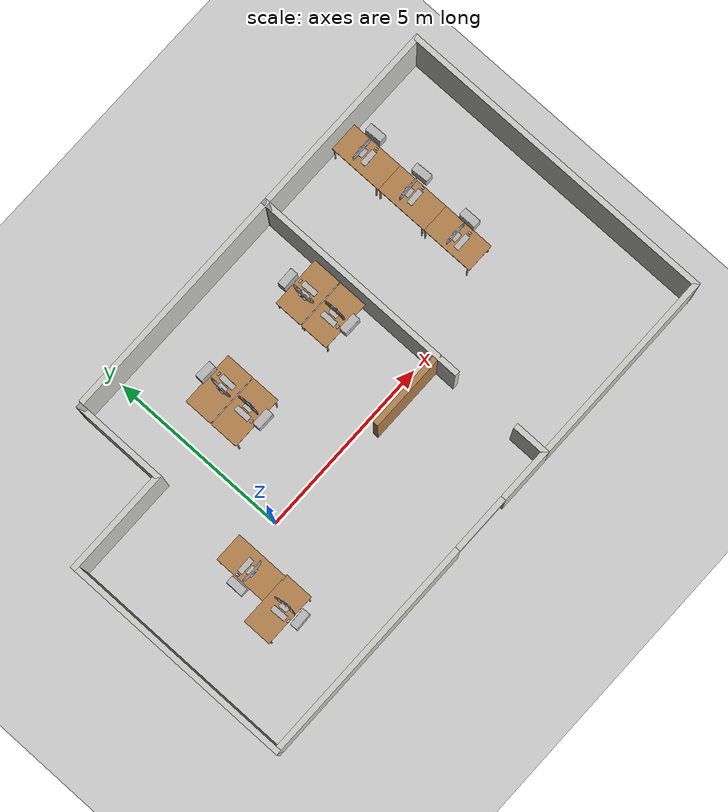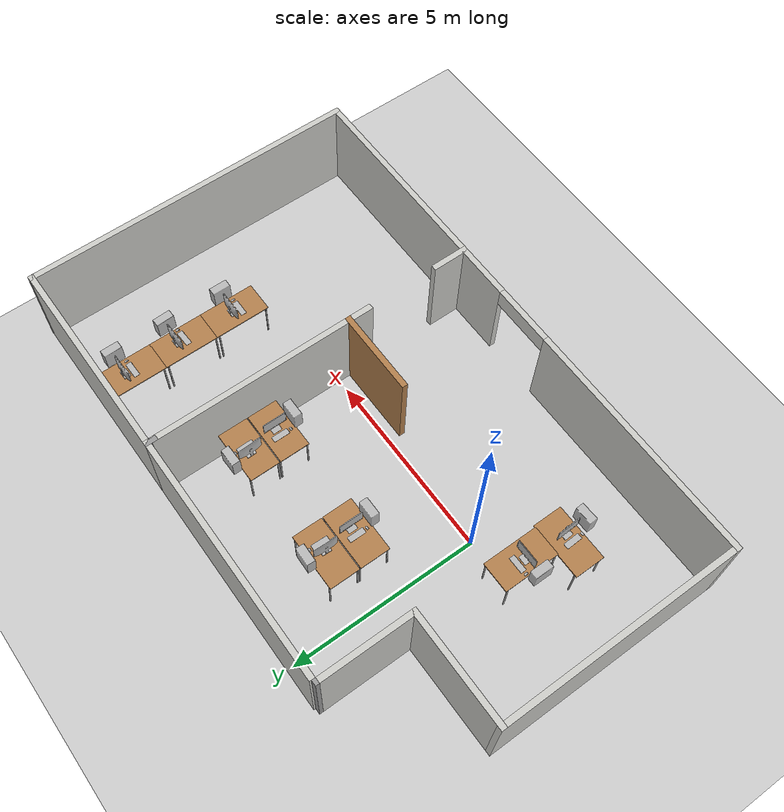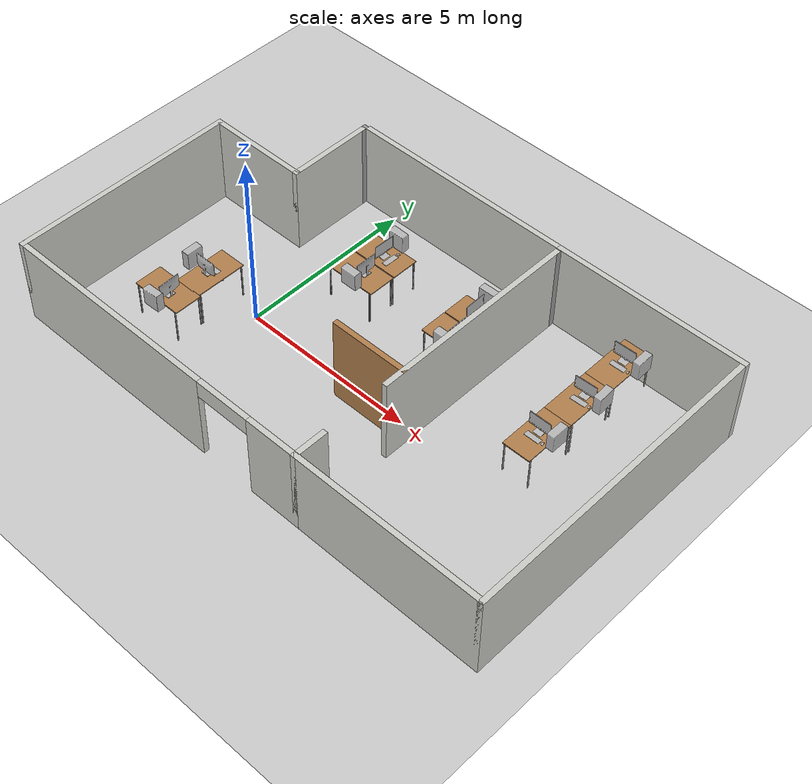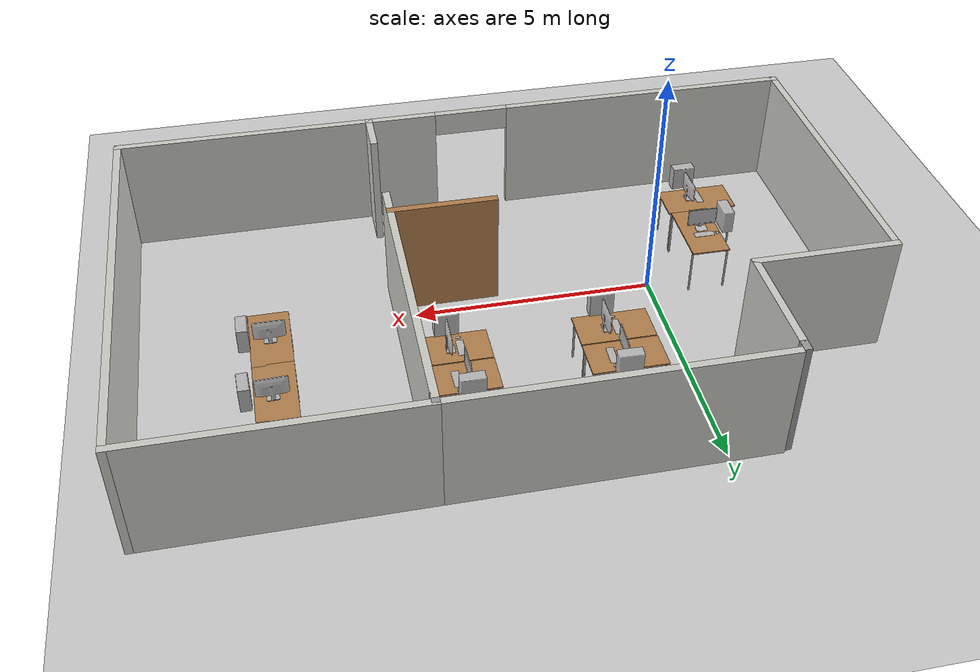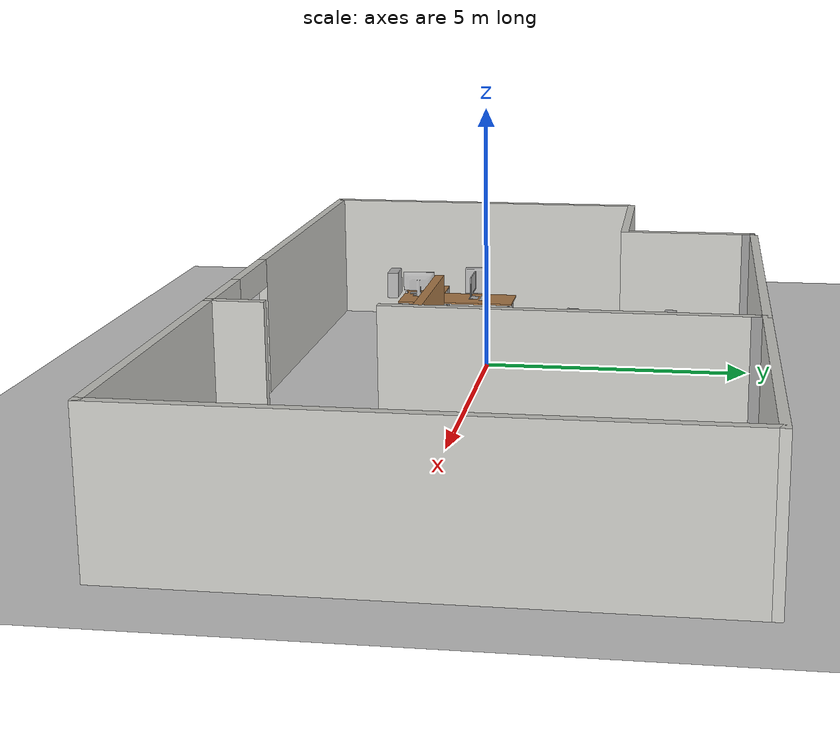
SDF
<sdf version="1.6">
 <world name="velmaverse">
  <scene><ambient>1.0 1.0 1.0 1.0</ambient><shadows>0</shadows></scene>
  <plugin name="ocznica" filename="libocznica.so"/>
  <light type="directional" name="sun1">
   <cast_shadows>false</cast_shadows>
   <pose>0 0 10 0 0 0</pose>
   <diffuse>1 1 1 0.5</diffuse>
   <specular>0 0 0 1</specular>
   <attenuation><range>1000</range><constant>1</constant><linear>1</linear><quadratic>0</quadratic></attenuation>
   <direction>0 0 -1</direction>
  </light>
  <light type="directional" name="sun2">
   <cast_shadows>false</cast_shadows>
   <pose>-20 -20 10 0 0 0</pose>
   <diffuse>1 1 1 0.5</diffuse>
   <specular>0 0 0 1</specular>
   <attenuation><range>1000</range><constant>1</constant><linear>1</linear><quadratic>0</quadratic></attenuation>
   <direction>0.5 0.5 0</direction>
  </light>
  <light type="directional" name="sun3">
   <cast_shadows>false</cast_shadows>
   <pose>-20 20 10 0 0 0</pose>
   <diffuse>1 1 1 0.5</diffuse>
   <specular>0 0 0 1</specular>
   <attenuation><range>1000</range><constant>1</constant><linear>1</linear><quadratic>0</quadratic></attenuation>
   <direction>0.5 -0.5 0</direction>
  </light>
  <light type="directional" name="sun4">
   <cast_shadows>false</cast_shadows>
   <pose>20 -20 10 0 0 0</pose>
   <diffuse>1 1 1 0.5</diffuse>
   <specular>0 0 0 1</specular>
   <attenuation><range>1000</range><constant>1</constant><linear>1</linear><quadratic>0</quadratic></attenuation>
   <direction>-0.5 0.5 0</direction>
  </light>
  <light type="directional" name="sun5">
   <cast_shadows>false</cast_shadows>
   <pose>20 20 10 0 0 0</pose>
   <diffuse>1 1 1 0.5</diffuse>
   <specular>0 0 0 1</specular>
   <attenuation><range>1000</range><constant>1</constant><linear>1</linear><quadratic>0</quadratic></attenuation>
   <direction>-0.5 -0.5 0</direction>
  </light>
  <light type="directional" name="sun6">
   <cast_shadows>false</cast_shadows>
   <pose>-20 0 10 0 0 0</pose>
   <diffuse>1 1 1 1</diffuse>
   <specular>0 0 0 1</specular>
   <attenuation><range>1000</range><constant>1</constant><linear>1</linear><quadratic>0</quadratic></attenuation>
   <direction>1 0 0</direction>
  </light>
  <light type="directional" name="sun7">
   <cast_shadows>false</cast_shadows>
   <pose>20 0 10 0 0 0</pose>
   <diffuse>1 1 1 1</diffuse>
   <specular>0 0 0 1</specular>
   <attenuation><range>1000</range><constant>1</constant><linear>1</linear><quadratic>0</quadratic></attenuation>
   <direction>-1 0 0</direction>
  </light>
  <light type="directional" name="sun8">
   <cast_shadows>false</cast_shadows>
   <pose>0 -20 10 0 0 0</pose>
   <diffuse>1 1 1 1</diffuse>
   <specular>0 0 0 1</specular>
   <attenuation><range>1000</range><constant>1</constant><linear>1</linear><quadratic>0</quadratic></attenuation>
   <direction>0 1 0</direction>
  </light>
  <light type="directional" name="sun9">
   <cast_shadows>false</cast_shadows>
   <pose>0 20 10 0 0 0</pose>
   <diffuse>1 1 1 1</diffuse>
   <specular>0 0 0 1</specular>
   <attenuation><range>1000</range><constant>1</constant><linear>1</linear><quadratic>0</quadratic></attenuation>
   <direction>0 -1 0</direction>
  </light>
  <model name="flooria"><include><uri>model://flooria</uri><pose>2 0 0 0 0 0</pose></include></model>
  <model name="Sala"><include><uri>model://Sala</uri></include></model>
  <model name="table1"><include><uri>model://table</uri></include><pose>4.65 2.25 0.01 0 0 0</pose></model>
  <model name="table2"><include><uri>model://table</uri></include><pose>4.65 3.075 0.01 0 0 0</pose></model>
  <model name="table3"><include><uri>model://table</uri></include><pose>1.45 2.25 0.01 0 0 0</pose></model>
  <model name="table4"><include><uri>model://table</uri></include><pose>1.45 3.075 0.01 0 0 0</pose></model>
  <model name="table5"><include><uri>model://table</uri></include><pose>-1.5 -1.5 0.01 0 0 0</pose></model>
  <model name="table6">
   <include><uri>model://table</uri></include>
   <pose>-1.2 -0.375 0.01 0 0 1.5707</pose>
  </model>
  <model name="table7"><include><uri>model://table</uri></include><pose>8.0 4.25 0.01 0 0 1.5707</pose></model>
  <model name="table8"><include><uri>model://table</uri></include><pose>8.0 2.765 0.01 0 0 1.5707</pose></model>
  <model name="table9"><include><uri>model://table</uri></include><pose>8.0 1.3 0.01 0 0 1.5707</pose></model>
  <model name="computer1">
   <include><uri>model://computer</uri></include>
   <pose>-1.25 -0.44 1.02 0 0 3.142</pose>
  </model>
  <model name="computer2">
   <include><uri>model://computer</uri></include>
   <pose>-1.35 -1.58 1.02 0 0 -1.53507</pose>
  </model>
  <model name="computer3">
   <include><uri>model://computer</uri></include>
   <pose>4.67 2.27 1.02 0 0 -1.5707</pose>
  </model>
  <model name="computer4">
   <include><uri>model://computer</uri></include>
   <pose>1.6 2.27 1.02 0 0 -1.5707</pose>
  </model>
  <model name="computer5">
   <include><uri>model://computer</uri></include>
   <pose>4.5 3.1 1.02 0 0 1.5907</pose>
  </model>
  <model name="computer6">
   <include><uri>model://computer</uri></include>
   <pose>1.51 3.05 1.02 0 0 1.5407</pose>
  </model>
  <model name="computer7"><include><uri>model://computer</uri></include><pose>8.0 1.35 1.02 0 0 0</pose></model>
  <model name="computer8">
   <include><uri>model://computer</uri></include>
   <pose>8.05 2.92 1.02 0 0 0.04</pose>
  </model>
  <model name="computer9">
   <include><uri>model://computer</uri></include>
   <pose>8.025 4.4 1.02 0 0 0.017</pose>
  </model>
 </world>
</sdf>

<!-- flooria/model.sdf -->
<sdf version="1.6">
    <model name="flooria">
		<plugin name="flooria" filename="libflooria.so"/>
        <static>true</static>
        <link name="base">
            <collision name="collision">
                <geometry>
                    <plane>
                        <normal>0 0 1</normal>
                        <size>100 100</size>
                    </plane>
                </geometry>
                <surface>
                    <friction>
                        <ode>
                            <mu>100</mu>
                            <mu2>100</mu2>
                        </ode>
                    </friction>
                </surface>
            </collision>
            <visual name="visual">
                <cast_shadows>false</cast_shadows>
                <geometry>
                    <plane>
                        <normal>0 0 1</normal>
                        <size>20 20</size>
                    </plane>
                </geometry>
                <material>
                    <script>
                        <uri>model://flooria/materials</uri>
                        <name>flooria/surface</name>
                    </script>
                </material>
            </visual>
        </link>
    </model>
</sdf>

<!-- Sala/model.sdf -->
<sdf version='1.6'>
  <model name='Sala'>
    <pose frame=''>3.38391 0.662582 0 0 -0 0</pose>
    <link name='Wall_0'>
      <pose frame=''>-2.675 -4.425 0 0 -0 0</pose>
      <visual name='Wall_0_Visual_0'>
        <pose frame=''>-1.56963 0 1.25 0 -0 0</pose>
        <geometry>
          <box>
            <size>6.36074 0.15 2.5</size>
          </box>
        </geometry>
        <material>
          <script>
            <uri>file://media/materials/scripts/gazebo.material</uri>
            <name>Gazebo/CeilingTiled</name>
          </script>
          <ambient>1 1 1 1</ambient>
        </material>
      </visual>
      <collision name='Wall_0_Collision_0'>
        <geometry>
          <box>
            <size>6.36074 0.15 2.5</size>
          </box>
        </geometry>
        <pose frame=''>-1.56963 0 1.25 0 -0 0</pose>
      </collision>
      <visual name='Wall_0_Visual_1'>
        <pose frame=''>3.98037 0 1.25 0 -0 0</pose>
        <geometry>
          <box>
            <size>1.53926 0.15 2.5</size>
          </box>
        </geometry>
        <material>
          <script>
            <uri>file://media/materials/scripts/gazebo.material</uri>
            <name>Gazebo/CeilingTiled</name>
          </script>
          <ambient>1 1 1 1</ambient>
        </material>
      </visual>
      <collision name='Wall_0_Collision_1'>
        <geometry>
          <box>
            <size>1.53926 0.15 2.5</size>
          </box>
        </geometry>
        <pose frame=''>3.98037 0 1.25 0 -0 0</pose>
      </collision>
      <visual name='Wall_0_Visual_2'>
        <pose frame=''>2.41074 0 2.25 0 -0 0</pose>
        <geometry>
          <box>
            <size>1.6 0.15 0.5</size>
          </box>
        </geometry>
        <material>
          <script>
            <uri>file://media/materials/scripts/gazebo.material</uri>
            <name>Gazebo/CeilingTiled</name>
          </script>
          <ambient>1 1 1 1</ambient>
        </material>
      </visual>
      <collision name='Wall_0_Collision_2'>
        <geometry>
          <box>
            <size>1.6 0.15 0.5</size>
          </box>
        </geometry>
        <pose frame=''>2.41074 0 2.25 0 -0 0</pose>
      </collision>
    </link>
    <link name='Wall_13'>
      <collision name='Wall_13_Collision'>
        <geometry>
          <box>
            <size>6 0.15 2.5</size>
          </box>
        </geometry>
        <pose frame=''>0 0 1.25 0 -0 0</pose>
      </collision>
      <visual name='Wall_13_Visual'>
        <pose frame=''>0 0 1.25 0 -0 0</pose>
        <geometry>
          <box>
            <size>6 0.15 2.5</size>
          </box>
        </geometry>
        <material>
          <script>
            <uri>file://media/materials/scripts/gazebo.material</uri>
            <name>Gazebo/CeilingTiled</name>
          </script>
          <ambient>1 1 1 1</ambient>
        </material>
      </visual>
      <pose frame=''>2 1.33 0 0 -0 1.5708</pose>
    </link>
    <link name='Wall_17'>
      <collision name='Wall_17_Collision'>
        <geometry>
          <box>
            <size>9 0.15 2.5</size>
          </box>
        </geometry>
        <pose frame=''>0 0 1.25 0 -0 0</pose>
      </collision>
      <visual name='Wall_17_Visual'>
        <pose frame=''>0 0 1.25 0 -0 0</pose>
        <geometry>
          <box>
            <size>9 0.15 2.5</size>
          </box>
        </geometry>
        <material>
          <script>
            <uri>file://media/materials/scripts/gazebo.material</uri>
            <name>Gazebo/CeilingTiled</name>
          </script>
          <ambient>1 1 1 1</ambient>
        </material>
      </visual>
      <pose frame=''>7.35 0 0 0 -0 1.5708</pose>
    </link>
    <link name='Wall_18'>
      <collision name='Wall_18_Collision'>
        <geometry>
          <box>
            <size>5.5 0.15 2.5</size>
          </box>
        </geometry>
        <pose frame=''>0 0 1.25 0 -0 0</pose>
      </collision>
      <visual name='Wall_18_Visual'>
        <pose frame=''>0 0 1.25 0 -0 0</pose>
        <geometry>
          <box>
            <size>5.5 0.15 2.5</size>
          </box>
        </geometry>
        <material>
          <script>
            <uri>file://media/materials/scripts/gazebo.material</uri>
            <name>Gazebo/CeilingTiled</name>
          </script>
          <ambient>1 1 1 1</ambient>
        </material>
      </visual>
      <pose frame=''>4.675 4.425 0 0 -0 3.14159</pose>
    </link>
    <link name='Wall_19'>
      <collision name='Wall_19_Collision'>
        <geometry>
          <box>
            <size>0.32 0.15 2.5</size>
          </box>
        </geometry>
        <pose frame=''>0 0 1.25 0 -0 0</pose>
      </collision>
      <visual name='Wall_19_Visual'>
        <pose frame=''>0 0 1.25 0 -0 0</pose>
        <geometry>
          <box>
            <size>0.32 0.15 2.5</size>
          </box>
        </geometry>
        <material>
          <script>
            <uri>file://media/materials/scripts/gazebo.material</uri>
            <name>Gazebo/Grey</name>
          </script>
          <ambient>1 1 1 1</ambient>
        </material>
      </visual>
      <pose frame=''>2 4.34 0 0 0 -1.5708</pose>
    </link>
    <link name='Wall_21'>
      <collision name='Wall_21_Collision'>
        <geometry>
          <box>
            <size>6.5 0.15 2.5</size>
          </box>
        </geometry>
        <pose frame=''>0 0 1.25 0 -0 0</pose>
      </collision>
      <visual name='Wall_21_Visual'>
        <pose frame=''>0 0 1.25 0 -0 0</pose>
        <geometry>
          <box>
            <size>6.5 0.15 2.5</size>
          </box>
        </geometry>
        <material>
          <script>
            <uri>file://media/materials/scripts/gazebo.material</uri>
            <name>Gazebo/CeilingTiled</name>
          </script>
          <ambient>1 1 1 1</ambient>
        </material>
      </visual>
      <pose frame=''>-7.35 -1.25 0 0 -0 1.5708</pose>
    </link>
    <link name='Wall_22'>
      <collision name='Wall_22_Collision'>
        <geometry>
          <box>
            <size>3 0.15 2.5</size>
          </box>
        </geometry>
        <pose frame=''>0 0 1.25 0 -0 0</pose>
      </collision>
      <visual name='Wall_22_Visual'>
        <pose frame=''>0 0 1.25 0 -0 0</pose>
        <geometry>
          <box>
            <size>3 0.15 2.5</size>
          </box>
        </geometry>
        <material>
          <script>
            <uri>file://media/materials/scripts/gazebo.material</uri>
            <name>Gazebo/CeilingTiled</name>
          </script>
          <ambient>1 1 1 1</ambient>
        </material>
      </visual>
      <pose frame=''>-5.925 1.925 0 0 -0 0</pose>
    </link>
    <link name='Wall_23'>
      <collision name='Wall_23_Collision'>
        <geometry>
          <box>
            <size>2.5 0.15 2.5</size>
          </box>
        </geometry>
        <pose frame=''>0 0 1.25 0 -0 0</pose>
      </collision>
      <visual name='Wall_23_Visual'>
        <pose frame=''>0 0 1.25 0 -0 0</pose>
        <geometry>
          <box>
            <size>2.5 0.15 2.5</size>
          </box>
        </geometry>
        <material>
          <script>
            <uri>file://media/materials/scripts/gazebo.material</uri>
            <name>Gazebo/CeilingTiled</name>
          </script>
          <ambient>1 1 1 1</ambient>
        </material>
      </visual>
      <pose frame=''>-4.5 3.1 0 0 -0 1.5708</pose>
    </link>
    <link name='Wall_24'>
      <collision name='Wall_24_Collision'>
        <geometry>
          <box>
            <size>0.25 0.15 2.5</size>
          </box>
        </geometry>
        <pose frame=''>0 0 1.25 0 -0 0</pose>
      </collision>
      <visual name='Wall_24_Visual'>
        <pose frame=''>0 0 1.25 0 -0 0</pose>
        <geometry>
          <box>
            <size>0.25 0.15 2.5</size>
          </box>
        </geometry>
        <material>
          <script>
            <uri>file://media/materials/scripts/gazebo.material</uri>
            <name>Gazebo/Grey</name>
          </script>
          <ambient>1 1 1 1</ambient>
        </material>
      </visual>
      <pose frame=''>-4.5 4.325 0 0 -0 1.5708</pose>
    </link>
    <link name='Wall_27'>
      <collision name='Wall_27_Collision'>
        <geometry>
          <box>
            <size>6.5 0.15 2.5</size>
          </box>
        </geometry>
        <pose frame=''>0 0 1.25 0 -0 0</pose>
      </collision>
      <visual name='Wall_27_Visual'>
        <pose frame=''>0 0 1.25 0 -0 0</pose>
        <geometry>
          <box>
            <size>6.5 0.15 2.5</size>
          </box>
        </geometry>
        <material>
          <script>
            <uri>file://media/materials/scripts/gazebo.material</uri>
            <name>Gazebo/CeilingTiled</name>
          </script>
          <ambient>1 1 1 1</ambient>
        </material>
      </visual>
      <pose frame=''>-1.175 4.425 0 0 -0 3.14159</pose>
    </link>
    <link name='Wall_29'>
      <collision name='Wall_29_Collision'>
        <geometry>
          <box>
            <size>2.25 0.15 2.5</size>
          </box>
        </geometry>
        <pose frame=''>0 0 1.25 0 -0 0</pose>
      </collision>
      <visual name='Wall_29_Visual'>
        <pose frame=''>0 0 1.25 0 -0 0</pose>
        <geometry>
          <box>
            <size>2.25 0.15 2.5</size>
          </box>
        </geometry>
        <material>
          <script>
            <uri>file://media/materials/scripts/gazebo.material</uri>
            <name>Gazebo/Wood</name>
          </script>
          <ambient>1 1 1 1</ambient>
        </material>
      </visual>
      <pose frame=''>0.949972 -1.03906 0 0 -0 3.14159</pose>
    </link>
    <link name='Wall_6'>
      <collision name='Wall_6_Collision'>
        <geometry>
          <box>
            <size>5.5 0.15 2.5</size>
          </box>
        </geometry>
        <pose frame=''>0 0 1.25 0 -0 0</pose>
      </collision>
      <visual name='Wall_6_Visual'>
        <pose frame=''>0 0 1.25 0 -0 0</pose>
        <geometry>
          <box>
            <size>5.5 0.15 2.5</size>
          </box>
        </geometry>
        <material>
          <script>
            <uri>file://media/materials/scripts/gazebo.material</uri>
            <name>Gazebo/CeilingTiled</name>
          </script>
          <ambient>1 1 1 1</ambient>
        </material>
      </visual>
      <pose frame=''>4.675 -4.425 0 0 -0 0</pose>
    </link>
    <link name='Wall_9'>
      <collision name='Wall_9_Collision'>
        <geometry>
          <box>
            <size>1 0.15 2.5</size>
          </box>
        </geometry>
        <pose frame=''>0 0 1.25 0 -0 0</pose>
      </collision>
      <visual name='Wall_9_Visual'>
        <pose frame=''>0 0 1.25 0 -0 0</pose>
        <geometry>
          <box>
            <size>1 0.15 2.5</size>
          </box>
        </geometry>
        <material>
          <script>
            <uri>file://media/materials/scripts/gazebo.material</uri>
            <name>Gazebo/CeilingTiled</name>
          </script>
          <ambient>1 0.764706 0.305882 1</ambient>
        </material>
      </visual>
      <pose frame=''>2 -4 0 0 -0 1.5708</pose>
    </link>
    <static>1</static>
  </model>
</sdf>

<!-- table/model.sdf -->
<sdf version="1.5">
  <model name="table">
    <static>true</static>
    <link name="link">
      <collision name="surface">
        <pose>0 0 1.0 0 0 0</pose>
        <geometry>
          <box>
            <size>1.5 0.8 0.03</size>
          </box>
        </geometry>
        <surface>
          <friction>
            <ode>
              <mu>0.6</mu>
              <mu2>0.6</mu2>
            </ode>
          </friction>
        </surface>
      </collision>
      <visual name="visual1">
        <pose>0 0 1.0 0 0 0</pose>
        <geometry>
          <box>
            <size>1.5 0.8 0.03</size>
          </box>
        </geometry>
        <material>
          <script>
            <uri>model://media/materials/scripts/gazebo.material</uri>
            <name>Gazebo/Wood</name>
          </script>
        </material>
      </visual>
      <collision name="front_left_leg">
        <pose>0.68 0.38 0.5 0 0 0</pose>
        <geometry>
          <cylinder>
            <radius>0.02</radius>
            <length>1.0</length>
          </cylinder>
        </geometry>
      </collision>
      <visual name="front_left_leg">
        <pose>0.68 0.38 0.5 0 0 0</pose>
        <geometry>
          <cylinder>
            <radius>0.02</radius>
            <length>1.0</length>
          </cylinder>
        </geometry>
        <material>
          <script>
            <uri>model://media/materials/scripts/gazebo.material</uri>
            <name>Gazebo/Grey</name>
          </script>
        </material>
      </visual>
      <collision name="front_right_leg">
        <pose>0.68 -0.38 0.5 0 0 0</pose>
        <geometry>
          <cylinder>
            <radius>0.02</radius>
            <length>1.0</length>
          </cylinder>
        </geometry>
      </collision>
      <visual name="front_right_leg">
        <pose>0.68 -0.38 0.5 0 0 0</pose>
        <geometry>
          <cylinder>
            <radius>0.02</radius>
            <length>1.0</length>
          </cylinder>
        </geometry>
        <material>
          <script>
            <uri>model://media/materials/scripts/gazebo.material</uri>
            <name>Gazebo/Grey</name>
          </script>
        </material>
      </visual>
      <collision name="back_right_leg">
        <pose>-0.68 -0.38 0.5 0 0 0</pose>
        <geometry>
          <cylinder>
            <radius>0.02</radius>
            <length>1.0</length>
          </cylinder>
        </geometry>
      </collision>
      <visual name="back_right_leg">
        <pose>-0.68 -0.38 0.5 0 0 0</pose>
        <geometry>
          <cylinder>
            <radius>0.02</radius>
            <length>1.0</length>
          </cylinder>
        </geometry>
        <material>
          <script>
            <uri>model://media/materials/scripts/gazebo.material</uri>
            <name>Gazebo/Grey</name>
          </script>
        </material>
      </visual>
      <collision name="back_left_leg">
        <pose>-0.68 0.38 0.5 0 0 0</pose>
        <geometry>
          <cylinder>
            <radius>0.02</radius>
            <length>1.0</length>
          </cylinder>
        </geometry>
      </collision>
      <visual name="back_left_leg">
        <pose>-0.68 0.38 0.5 0 0 0</pose>
        <geometry>
          <cylinder>
            <radius>0.02</radius>
            <length>1.0</length>
          </cylinder>
        </geometry>
        <material>
          <script>
            <uri>model://media/materials/scripts/gazebo.material</uri>
            <name>Gazebo/Grey</name>
          </script>
        </material>
      </visual>
    </link>
  </model>
</sdf>

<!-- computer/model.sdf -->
<sdf version="1.5">
  <model name="computer">
    <static>true</static>
    <link name="monitor">
      <visual name="visual">
        <geometry>
          <mesh>
            <uri>model://computer/meshes/computer_monitor.obj</uri>
            <scale>0.01 0.01 0.01</scale>
          </mesh>
        </geometry>
      </visual>
    </link>
    <link name="tower">
      <pose>0.5 0 0 0 0 0</pose>
      <visual name="visual">
        <geometry>
          <mesh>
            <uri>model://computer/meshes/computer_tower.obj</uri>
            <scale>0.01 0.01 0.01</scale>
          </mesh>
        </geometry>
      </visual>
    </link>
  </model>
</sdf>
